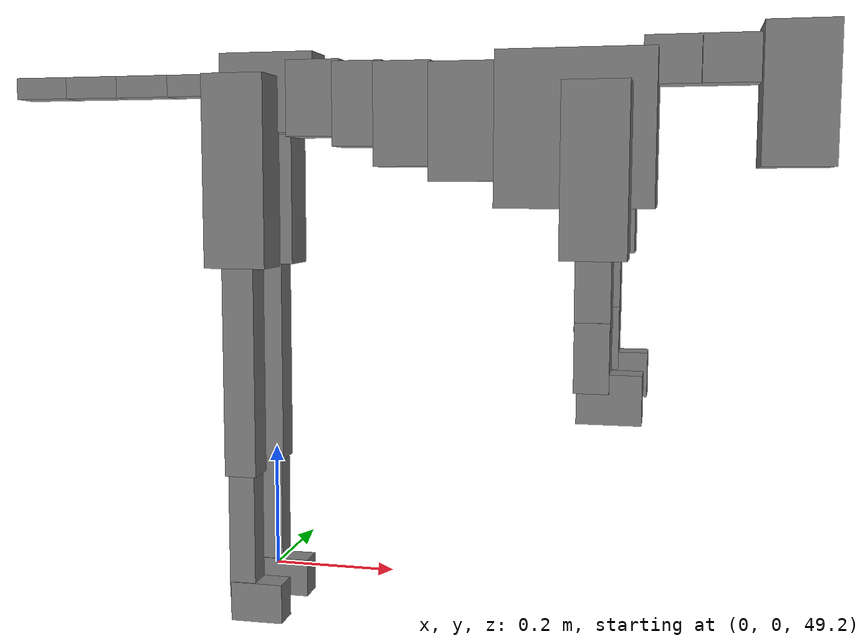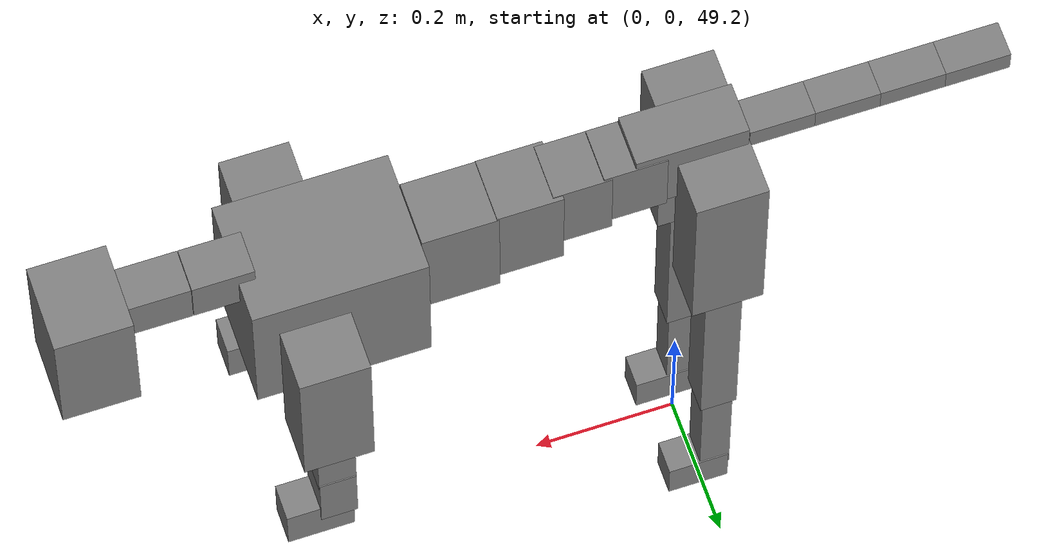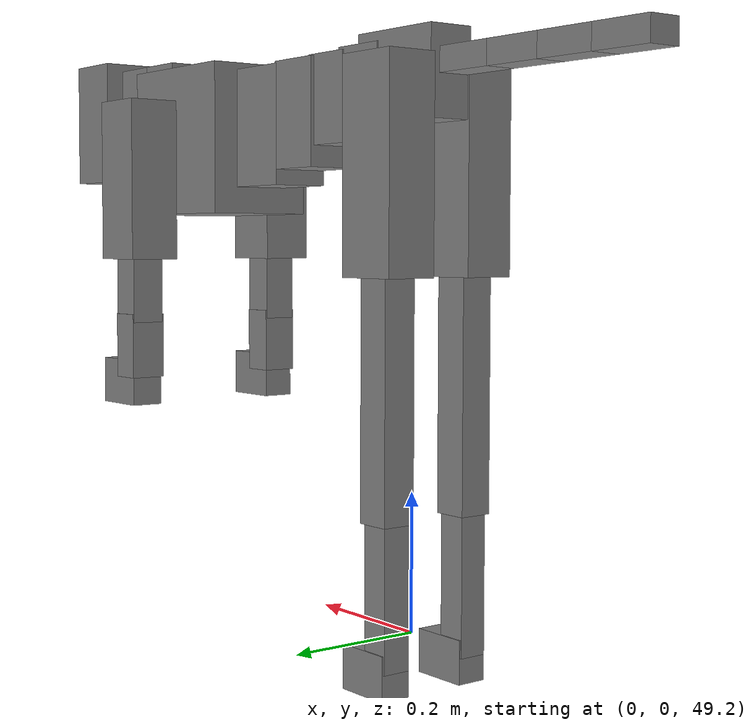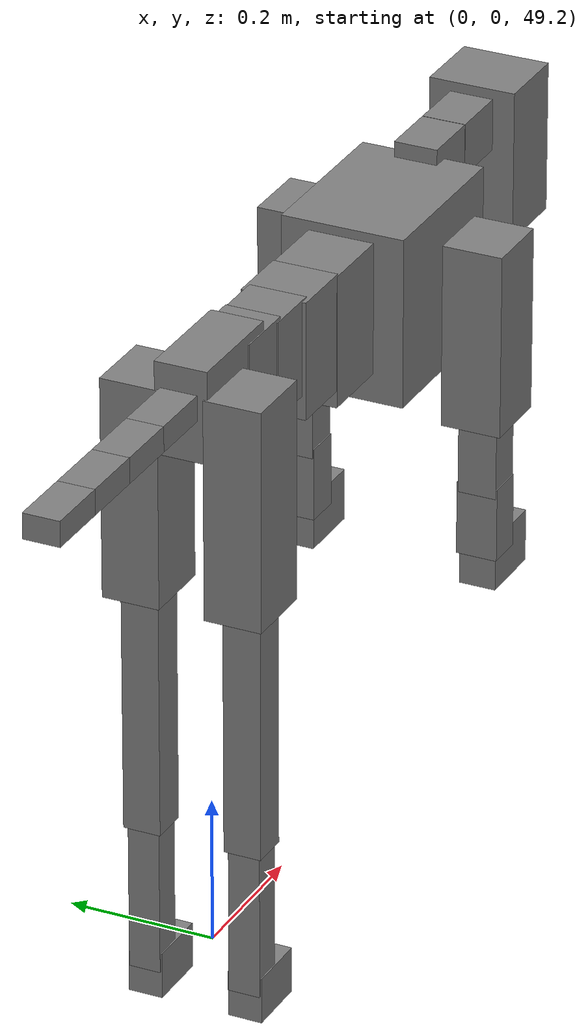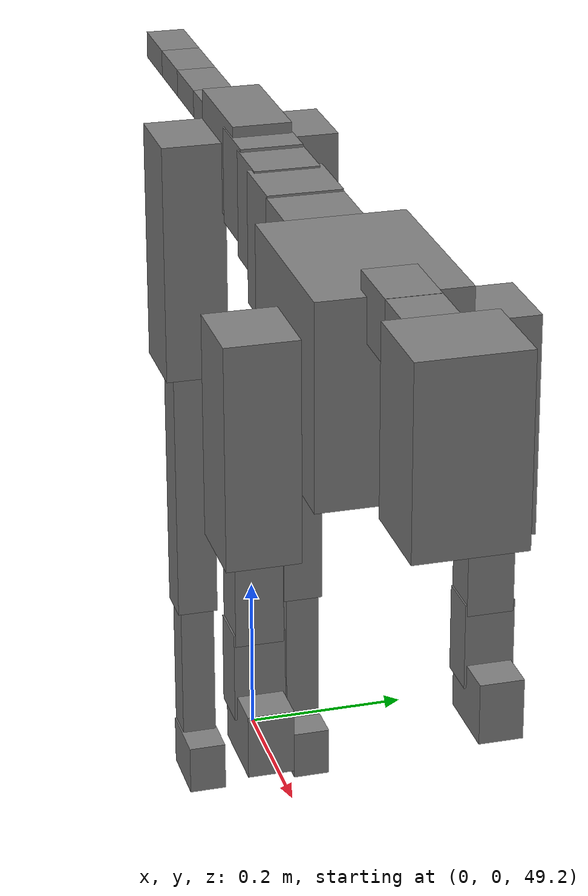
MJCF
<mujoco model="dog">

    <default>
        <joint armature="0.02" stiffness="1" damping="0.2" limited="true"/>
        <geom condim="3" friction="1 0.05 0.05" margin="0.01"/>
        <motor ctrllimited="true" ctrlrange="-1.0 1.0" forcelimited="true" gear="50"/>
    </default>

    <compiler inertiafromgeom="true" angle="radian"/>

    <option timestep="0.016" iterations="50" tolerance="1e-10" solver="Newton" jacobian="dense" cone="pyramidal"/>

    <size nconmax="20000" njmax="60000" nstack="5000000"/>
    <visual>
        <map force="0.1" zfar="30"/>
        <rgba haze="0.15 0.25 0.35 1"/>
        <quality shadowsize="2048"/>
        <global offwidth="800" offheight="800"/>
    </visual>

    <asset>
        <texture type="skybox" builtin="gradient" rgb1="0.3 0.5 0.7" rgb2="0 0 0" width="512" height="512"/>
        <texture name="texplane" type="2d" builtin="checker" rgb1=".2 .3 .4" rgb2=".1 0.15 0.2" width="512" height="512"
                 mark="cross" markrgb=".8 .8 .8"/>
        <texture name="texgeom" type="cube" builtin="flat" mark="cross" width="127" height="1278" rgb1="0.8 0.6 0.4"
                 rgb2="0.8 0.6 0.4" markrgb="1 1 1" random="0.01"/>

        <material name="matplane" reflectance="0.3" texture="texplane" texrepeat="1 1" texuniform="true"/>
        <material name="matgeom" texture="texgeom" texuniform="true" rgba="0.8 0.6 .4 1"/>
    </asset>

    <worldbody>
        <geom name="floor" pos="0 0 0" size="0 0 .25" type="plane" material="matplane" condim="3"/>

        <light directional="false" diffuse=".2 .2 .2" specular="0 0 0" pos="0 0 5" dir="0 0 -1" castshadow="false"/>
        <light mode="targetbodycom" target="torso" directional="false" diffuse=".8 .8 .8" specular="0.3 0.3 0.3"
               pos="0 0 4.0" dir="0 0 -1"/>

        <body name="root" pos="0 0 50">
            <freejoint name="root_1"/>
            <geom type="box" pos="0 0 -0.02" size="0.0774  0.0358  0.063" density="2030"/>

            <body name="spine1" pos="0.054 0 0">
                <joint name="spine1_y" axis="0 1 0" range="0 0.7" limited="true"/>
                <geom type="box" pos="0.02375 0 -0.03" size="0.04375  0.0375  0.05985" density="2030"/>

                <body name="spine2" pos="0.0612 0 0">
                    <joint name="spine2_y" axis="0 1 0" range="-0.15 0.15" limited="true"/>
                    <geom type="box" pos="0.03555  0  -0.04" size="0.04055  0.039  0.06615" density="2030"/>

                    <body name="spine3" pos="0.0730 0 0">
                        <joint name="spine3_y" axis="0 1 0" range="-0.15 0.15" limited="true"/>
                        <geom type="box" pos="0.03555  0  -0.057" size="0.04555  0.0445  0.081" density="2030"/>

                        <body name="spine4" pos="0.0780 0 0">
                            <joint name="spine4_y" axis="0 1 0" range="-0.15 0.15" limited="true"/>
                            <geom type="box" pos="0.05265  0  -0.07" size="0.05265  0.045  0.09135" density="2030"/>

                            <body name="torso" pos="0.1082 0 0">
                                <joint name="torso_y" axis="0 1 0" range="-0.15 0.15" limited="true"/>
                                <geom type="box" pos="0.11925  0  -0.085" size="0.11925  0.085  0.11745"
                                      density="2030"/>

                                <body name="neck1" pos="0.2160  0   0.0180">
                                    <joint name="neck1_y" axis="0 1 0" range="-1.2  -1" limited="true"/>
                                    <geom type="box" pos="0.0423  0  0" size="0.0423  0.03  0.036" density="2325"/>

                                    <body name="neck2" pos="0.0853  0  0">
                                        <joint name="neck2_y" axis="0 1 0" range="0.1  0" limited="true"/>
                                        <geom type="box" pos="0.0423  0  0" size="0.0423  0.03  0.036" density="2325"/>

                                        <body name="head" pos="0.0853  0  0">
                                            <joint name="head_y" axis="0 1 0" range="-0.3  -0.2" limited="true"/>
                                            <geom type="box" pos="0.0531  0  -0.055" size="0.0531  0.06  0.1044"
                                                  density="4030"/>

                                        </body>
                                    </body>
                                </body>

                                <body name="front_shoulder" pos="0.156  0   -0.0480">
                                    <joint name="front_shoulder_y" axis="0 1 0" range="-1 1.5" limited="true"/>
                                    <geom type="box" pos="0 0.13 -0.1004" size="0.0482  0.0412  0.1270" density="1158"/>
                                    <geom type="box" pos="0 -0.13 -0.1004" size="0.0482  0.0412  0.1270"
                                          density="1158"/>

                                    <body name="front_elbow" pos="0  0  -0.2007">
                                        <joint name="front_elbow_y" axis="0 1 0" range="-2 0" limited="true"/>
                                        <geom type="box" pos="0 0.13 -0.0644" size="0.0260  0.0266  0.0644"
                                              density="1081"/>
                                        <geom type="box" pos="0 -0.13 -0.0644" size="0.0260  0.0266  0.0644"
                                              density="1081"/>

                                        <body name="front_wrist" pos="0  0  -0.1287">
                                            <joint name="front_wrist_y" axis="0 1 0" range="-0.2 0" limited="true"/>
                                            <geom type="box" pos="0 0.13 -0.0381" size="0.0255  0.0283  0.0513"
                                                  density="1664"/>
                                            <geom type="box" pos="0 -0.13 -0.0381" size="0.0255  0.0283  0.0513"
                                                  density="1664"/>

                                            <body name="front_finger_end" pos="0  0  -0.0763">
                                                <joint name="front_finger_y" axis="0 1 0" range="-0.4 1"
                                                       limited="true"/>
                                                <geom type="box" pos="0.0255  0.13  -0.0215"
                                                      size="0.0467  0.0255  0.0365" density="1515"/>
                                                <geom type="box" pos="0.0255  -0.13  -0.0215"
                                                      size="0.0467  0.0255  0.0365" density="1515"/>

                                            </body>

                                        </body>
                                    </body>
                                </body>

                            </body>
                        </body>
                    </body>
                </body>
            </body>

            <body name="back_hip" pos="-0.03 0 -0.018">
                <joint name="back_hip_y" axis="0 1 0" range="-1.5 0.3" limited="true"/>
                <geom type="box" pos="0 0.07 -0.1282" size="0.0499  0.0391  0.1510" density="1154"/>
                <geom type="box" pos="0 -0.07 -0.1282" size="0.0499  0.0391  0.1510" density="1154"/>

                <body name="back_knee" pos="0  0  -0.2564">
                    <joint name="back_knee_y" axis="0 1 0" range="0 2.8" limited="true"/>
                    <geom type="box" pos="0 0.07 -0.1716" size="0.0259  0.0256  0.1871" density="1227"/>
                    <geom type="box" pos="0 -0.07 -0.1716" size="0.0259  0.0256  0.1871" density="1227"/>

                    <body name="back_ankle" pos="0  0  -0.3431">
                        <joint name="back_ankle_y" axis="0 1 0" range="-2.2 0" limited="true"/>
                        <geom type="box" pos="0 0.07 -0.1032" size="0.0216  0.0216  0.1145" density="1284"/>
                        <geom type="box" pos="0 -0.07 -0.1032" size="0.0216  0.0216  0.1145" density="1284"/>

                        <body name="back_toe_end" pos="0  0  -0.2065">
                            <joint name="back_toe_y" axis="0 1 0" range="-0.4 1" limited="true"/>
                            <geom type="box" pos="0.0235  0.07  -0.0170" size="0.0430  0.0235  0.0320" density="1515"/>
                            <geom type="box" pos="0.0235  -0.07  -0.0170" size="0.0430  0.0235  0.0320" density="1515"/>

                        </body>
                    </body>
                </body>
            </body>

            <body name="tail1" pos="-0.074 0 -0.006">
                <joint name="tail1_y" axis="0 1 0" range="-0.2 0.2" limited="true"/>
                <geom type="box" pos="-0.0536  0  0" size="0.045  0.025  0.0175" density="1587"/>

                <body name="tail2" pos="-0.09 0 0">
                    <joint name="tail2_y" axis="0 1 0" range="-0.2 0.2" limited="true"/>
                    <geom type="box" pos="-0.0536  0  0" size="0.045  0.025  0.0175" density="1587"/>

                    <body name="tail3" pos="-0.09 0 0">
                        <joint name="tail3_y" axis="0 1 0" range="-0.2 0.2" limited="true"/>
                        <geom type="box" pos="-0.0536  0  0" size="0.045  0.025  0.0175" density="1587"/>

                        <body name="tail4" pos="-0.09 0 0">
                            <joint name="tail4_y" axis="0 1 0" range="-0.2 0.2" limited="true"/>
                            <geom type="box" pos="-0.0536  0  0" size="0.045  0.025  0.0175" density="1587"/>

                        </body>
                    </body>
                </body>
            </body>
        </body>
    </worldbody>

    <actuator>
        <motor joint="spine1_y" forcerange="-150 150     "/>
        <motor joint="spine2_y" forcerange="-150 150     "/>
        <motor joint="spine3_y" forcerange="-150 150     "/>
        <motor joint="spine4_y" forcerange="-150 150     "/>
        <motor joint="torso_y" forcerange="-150 150     "/>
        <motor joint="neck1_y" forcerange="-100 100       "/>
        <motor joint="neck2_y" forcerange="-100 100       "/>
        <motor joint="head_y" forcerange="-150 150       "/>
        <motor joint="front_shoulder_y" forcerange="-186.58 188.27"/>
        <motor joint="front_elbow_y" forcerange="-130.57 163.00"/>
        <motor joint="front_wrist_y" forcerange="-111.80 114.49"/>
        <motor joint="front_finger_y" forcerange="-23.93 71.81"/>
        <motor joint="back_hip_y" forcerange="-378.25 343.55"/>
        <motor joint="back_knee_y" forcerange="-343.77 227.89"/>
        <motor joint="back_angle_y" forcerange="-84.70 161.59"/>
        <motor joint="back_toe_y" forcerange="-77.06 30.76"/>
        <motor joint="tail1_y" forcerange="-50 50     "/>
        <motor joint="tail2_y" forcerange="-50 50     "/>
        <motor joint="tail3_y" forcerange="-50 50     "/>
        <motor joint="tail4_y" forcerange="-50 50     "/>
    </actuator>
</mujoco>
